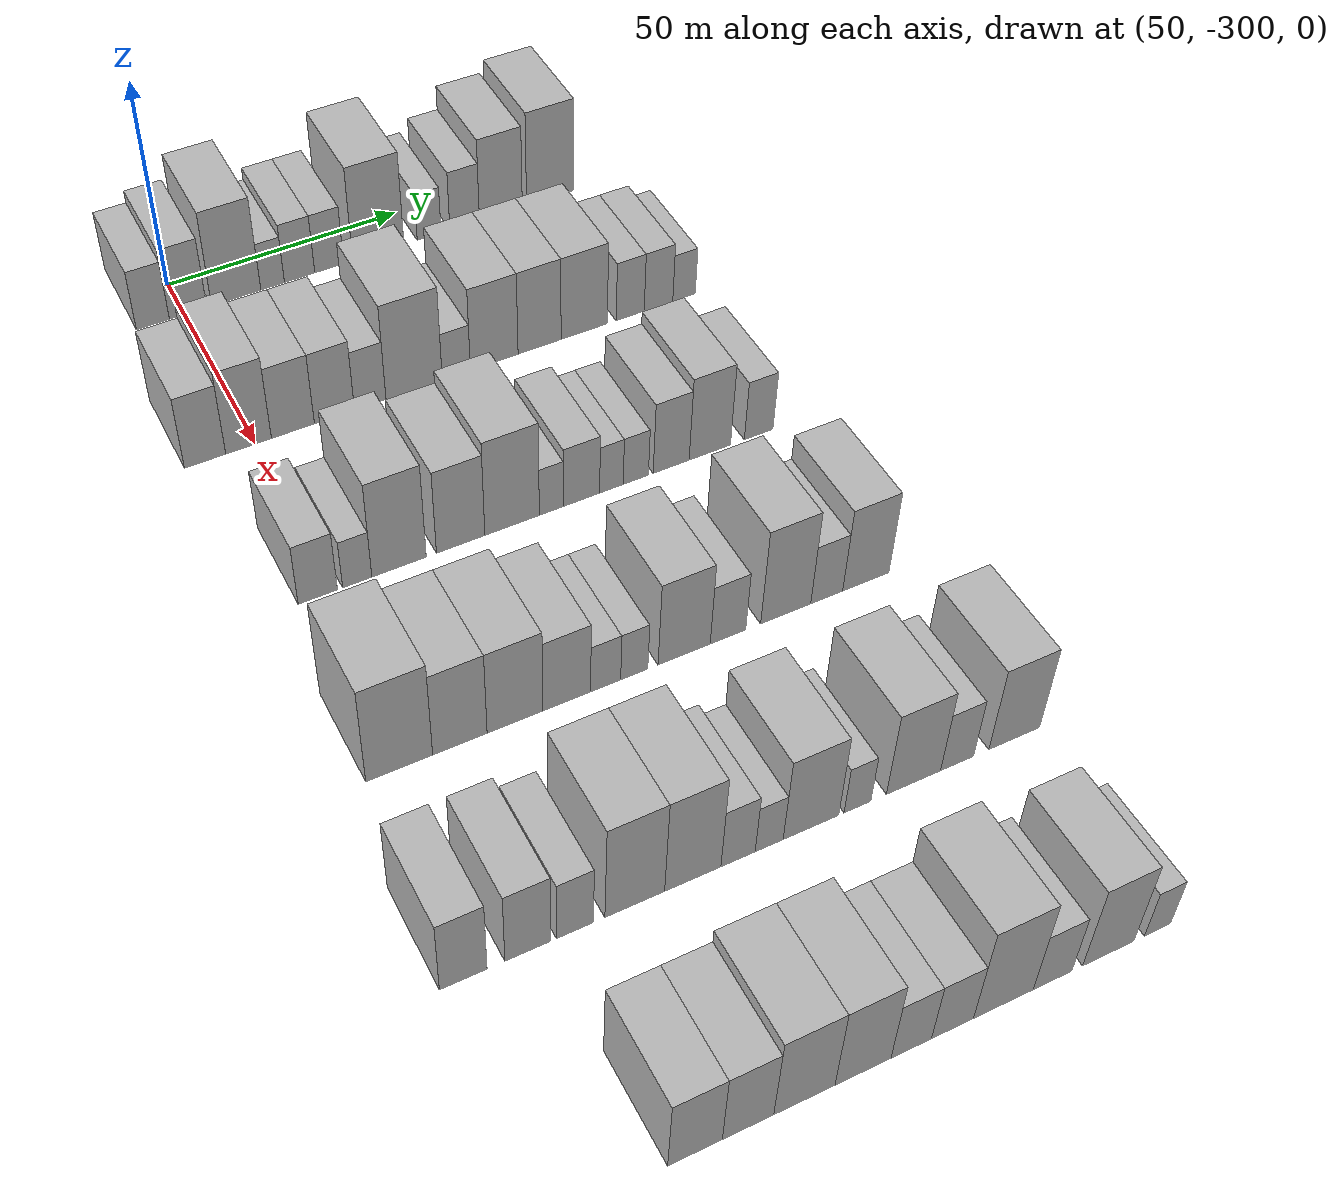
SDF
<sdf version="1.6">
 <world name="default">
  <model name="building_32">
   <static>1</static>
   <pose>50.0000 -306.5154 0 0.000000 0.000000 0.000000</pose>
   <link name="link">
    <pose>0 0 7.50 0 0 0</pose>
    <collision name="collision"><geometry><box><size>20.0000 6.8873 15.0000</size></box></geometry></collision>
    <visual name="visual">
     <cast_shadows>0</cast_shadows>
     <geometry><box><size>20.0000 6.8873 15.0000</size></box></geometry>
     <material>
      <script>
       <uri>model://HANNAS_wall/materials/scripts</uri>
       <uri>model://HANNAS_wall/materials/textures</uri>
       <name>vrc/HANNAS_wall</name>
      </script>
     </material>
    </visual>
   </link>
  </model>
  <model name="building_33">
   <static>1</static>
   <pose>50.0000 -299.1280 0 0.000000 0.000000 0.000000</pose>
   <link name="link">
    <pose>0 0 9.00 0 0 0</pose>
    <collision name="collision"><geometry><box><size>20.0000 7.8874 18.0000</size></box></geometry></collision>
    <visual name="visual">
     <cast_shadows>0</cast_shadows>
     <geometry><box><size>20.0000 7.8874 18.0000</size></box></geometry>
     <material>
      <script>
       <uri>model://HANNAS_wall/materials/scripts</uri>
       <uri>model://HANNAS_wall/materials/textures</uri>
       <name>vrc/HANNAS_wall</name>
      </script>
     </material>
    </visual>
   </link>
  </model>
  <model name="building_34">
   <static>1</static>
   <pose>50.0000 -288.9221 0 0.000000 0.000000 0.000000</pose>
   <link name="link">
    <pose>0 0 12.00 0 0 0</pose>
    <collision name="collision"><geometry><box><size>20.0000 10.5243 24.0000</size></box></geometry></collision>
    <visual name="visual">
     <cast_shadows>0</cast_shadows>
     <geometry><box><size>20.0000 10.5243 24.0000</size></box></geometry>
     <material>
      <script>
       <uri>model://HANNAS_wall/materials/scripts</uri>
       <uri>model://HANNAS_wall/materials/textures</uri>
       <name>vrc/HANNAS_wall</name>
      </script>
     </material>
    </visual>
   </link>
  </model>
  <model name="building_35">
   <static>1</static>
   <pose>50.0000 -281.1054 0 0.000000 0.000000 0.000000</pose>
   <link name="link">
    <pose>0 0 6.00 0 0 0</pose>
    <collision name="collision"><geometry><box><size>20.0000 5.1092 12.0000</size></box></geometry></collision>
    <visual name="visual">
     <cast_shadows>0</cast_shadows>
     <geometry><box><size>20.0000 5.1092 12.0000</size></box></geometry>
     <material>
      <script>
       <uri>model://HANNAS_wall/materials/scripts</uri>
       <uri>model://HANNAS_wall/materials/textures</uri>
       <name>vrc/HANNAS_wall</name>
      </script>
     </material>
    </visual>
   </link>
  </model>
  <model name="building_36">
   <static>1</static>
   <pose>50.0000 -275.2519 0 0.000000 0.000000 0.000000</pose>
   <link name="link">
    <pose>0 0 7.50 0 0 0</pose>
    <collision name="collision"><geometry><box><size>20.0000 6.5978 15.0000</size></box></geometry></collision>
    <visual name="visual">
     <cast_shadows>0</cast_shadows>
     <geometry><box><size>20.0000 6.5978 15.0000</size></box></geometry>
     <material>
      <script>
       <uri>model://HANNAS_wall/materials/scripts</uri>
       <uri>model://HANNAS_wall/materials/textures</uri>
       <name>vrc/HANNAS_wall</name>
      </script>
     </material>
    </visual>
   </link>
  </model>
  <model name="building_37">
   <static>1</static>
   <pose>50.0000 -268.7758 0 0.000000 0.000000 0.000000</pose>
   <link name="link">
    <pose>0 0 7.50 0 0 0</pose>
    <collision name="collision"><geometry><box><size>20.0000 6.3543 15.0000</size></box></geometry></collision>
    <visual name="visual">
     <cast_shadows>0</cast_shadows>
     <geometry><box><size>20.0000 6.3543 15.0000</size></box></geometry>
     <material>
      <script>
       <uri>model://HANNAS_wall/materials/scripts</uri>
       <uri>model://HANNAS_wall/materials/textures</uri>
       <name>vrc/HANNAS_wall</name>
      </script>
     </material>
    </visual>
   </link>
  </model>
  <model name="building_38">
   <static>1</static>
   <pose>50.0000 -257.8932 0 0.000000 0.000000 0.000000</pose>
   <link name="link">
    <pose>0 0 12.00 0 0 0</pose>
    <collision name="collision"><geometry><box><size>20.0000 11.4109 24.0000</size></box></geometry></collision>
    <visual name="visual">
     <cast_shadows>0</cast_shadows>
     <geometry><box><size>20.0000 11.4109 24.0000</size></box></geometry>
     <material>
      <script>
       <uri>model://HANNAS_wall/materials/scripts</uri>
       <uri>model://HANNAS_wall/materials/textures</uri>
       <name>vrc/HANNAS_wall</name>
      </script>
     </material>
    </visual>
   </link>
  </model>
  <model name="building_39">
   <static>1</static>
   <pose>50.0000 -246.4863 0 0.000000 0.000000 0.000000</pose>
   <link name="link">
    <pose>0 0 6.00 0 0 0</pose>
    <collision name="collision"><geometry><box><size>20.0000 5.4028 12.0000</size></box></geometry></collision>
    <visual name="visual">
     <cast_shadows>0</cast_shadows>
     <geometry><box><size>20.0000 5.4028 12.0000</size></box></geometry>
     <material>
      <script>
       <uri>model://HANNAS_wall/materials/scripts</uri>
       <uri>model://HANNAS_wall/materials/textures</uri>
       <name>vrc/HANNAS_wall</name>
      </script>
     </material>
    </visual>
   </link>
  </model>
  <model name="building_40">
   <static>1</static>
   <pose>50.0000 -238.3935 0 0.000000 0.000000 0.000000</pose>
   <link name="link">
    <pose>0 0 7.50 0 0 0</pose>
    <collision name="collision"><geometry><box><size>20.0000 6.7829 15.0000</size></box></geometry></collision>
    <visual name="visual">
     <cast_shadows>0</cast_shadows>
     <geometry><box><size>20.0000 6.7829 15.0000</size></box></geometry>
     <material>
      <script>
       <uri>model://HANNAS_wall/materials/scripts</uri>
       <uri>model://HANNAS_wall/materials/textures</uri>
       <name>vrc/HANNAS_wall</name>
      </script>
     </material>
    </visual>
   </link>
  </model>
  <model name="building_41">
   <static>1</static>
   <pose>50.0000 -230.0352 0 0.000000 0.000000 0.000000</pose>
   <link name="link">
    <pose>0 0 10.50 0 0 0</pose>
    <collision name="collision"><geometry><box><size>20.0000 9.9336 21.0000</size></box></geometry></collision>
    <visual name="visual">
     <cast_shadows>0</cast_shadows>
     <geometry><box><size>20.0000 9.9336 21.0000</size></box></geometry>
     <material>
      <script>
       <uri>model://HANNAS_wall/materials/scripts</uri>
       <uri>model://HANNAS_wall/materials/textures</uri>
       <name>vrc/HANNAS_wall</name>
      </script>
     </material>
    </visual>
   </link>
  </model>
  <model name="building_42">
   <static>1</static>
   <pose>50.0000 -218.5672 0 0.000000 0.000000 0.000000</pose>
   <link name="link">
    <pose>0 0 12.00 0 0 0</pose>
    <collision name="collision"><geometry><box><size>20.0000 11.0022 24.0000</size></box></geometry></collision>
    <visual name="visual">
     <cast_shadows>0</cast_shadows>
     <geometry><box><size>20.0000 11.0022 24.0000</size></box></geometry>
     <material>
      <script>
       <uri>model://HANNAS_wall/materials/scripts</uri>
       <uri>model://HANNAS_wall/materials/textures</uri>
       <name>vrc/HANNAS_wall</name>
      </script>
     </material>
    </visual>
   </link>
  </model>
  <model name="building_175">
   <static>1</static>
   <pose>90.0000 -309.9667 0 0.000000 0.000000 0.000000</pose>
   <link name="link">
    <pose>0 0 9.00 0 0 0</pose>
    <collision name="collision"><geometry><box><size>20.0000 8.1712 18.0000</size></box></geometry></collision>
    <visual name="visual">
     <cast_shadows>0</cast_shadows>
     <geometry><box><size>20.0000 8.1712 18.0000</size></box></geometry>
     <material>
      <script>
       <uri>model://HANNAS_wall/materials/scripts</uri>
       <uri>model://HANNAS_wall/materials/textures</uri>
       <name>vrc/HANNAS_wall</name>
      </script>
     </material>
    </visual>
   </link>
  </model>
  <model name="building_176">
   <static>1</static>
   <pose>90.0000 -301.3158 0 0.000000 0.000000 0.000000</pose>
   <link name="link">
    <pose>0 0 10.50 0 0 0</pose>
    <collision name="collision"><geometry><box><size>20.0000 9.1305 21.0000</size></box></geometry></collision>
    <visual name="visual">
     <cast_shadows>0</cast_shadows>
     <geometry><box><size>20.0000 9.1305 21.0000</size></box></geometry>
     <material>
      <script>
       <uri>model://HANNAS_wall/materials/scripts</uri>
       <uri>model://HANNAS_wall/materials/textures</uri>
       <name>vrc/HANNAS_wall</name>
      </script>
     </material>
    </visual>
   </link>
  </model>
  <model name="building_177">
   <static>1</static>
   <pose>90.0000 -292.3960 0 0.000000 0.000000 0.000000</pose>
   <link name="link">
    <pose>0 0 9.00 0 0 0</pose>
    <collision name="collision"><geometry><box><size>20.0000 8.7093 18.0000</size></box></geometry></collision>
    <visual name="visual">
     <cast_shadows>0</cast_shadows>
     <geometry><box><size>20.0000 8.7093 18.0000</size></box></geometry>
     <material>
      <script>
       <uri>model://HANNAS_wall/materials/scripts</uri>
       <uri>model://HANNAS_wall/materials/textures</uri>
       <name>vrc/HANNAS_wall</name>
      </script>
     </material>
    </visual>
   </link>
  </model>
  <model name="building_178">
   <static>1</static>
   <pose>90.0000 -283.9366 0 0.000000 0.000000 0.000000</pose>
   <link name="link">
    <pose>0 0 9.00 0 0 0</pose>
    <collision name="collision"><geometry><box><size>20.0000 8.2094 18.0000</size></box></geometry></collision>
    <visual name="visual">
     <cast_shadows>0</cast_shadows>
     <geometry><box><size>20.0000 8.2094 18.0000</size></box></geometry>
     <material>
      <script>
       <uri>model://HANNAS_wall/materials/scripts</uri>
       <uri>model://HANNAS_wall/materials/textures</uri>
       <name>vrc/HANNAS_wall</name>
      </script>
     </material>
    </visual>
   </link>
  </model>
  <model name="building_179">
   <static>1</static>
   <pose>90.0000 -276.5588 0 0.000000 0.000000 0.000000</pose>
   <link name="link">
    <pose>0 0 7.50 0 0 0</pose>
    <collision name="collision"><geometry><box><size>20.0000 6.5462 15.0000</size></box></geometry></collision>
    <visual name="visual">
     <cast_shadows>0</cast_shadows>
     <geometry><box><size>20.0000 6.5462 15.0000</size></box></geometry>
     <material>
      <script>
       <uri>model://HANNAS_wall/materials/scripts</uri>
       <uri>model://HANNAS_wall/materials/textures</uri>
       <name>vrc/HANNAS_wall</name>
      </script>
     </material>
    </visual>
   </link>
  </model>
  <model name="building_180">
   <static>1</static>
   <pose>90.0000 -267.3693 0 0.000000 0.000000 0.000000</pose>
   <link name="link">
    <pose>0 0 12.00 0 0 0</pose>
    <collision name="collision"><geometry><box><size>20.0000 11.8329 24.0000</size></box></geometry></collision>
    <visual name="visual">
     <cast_shadows>0</cast_shadows>
     <geometry><box><size>20.0000 11.8329 24.0000</size></box></geometry>
     <material>
      <script>
       <uri>model://HANNAS_wall/materials/scripts</uri>
       <uri>model://HANNAS_wall/materials/textures</uri>
       <name>vrc/HANNAS_wall</name>
      </script>
     </material>
    </visual>
   </link>
  </model>
  <model name="building_181">
   <static>1</static>
   <pose>90.0000 -258.4554 0 0.000000 0.000000 0.000000</pose>
   <link name="link">
    <pose>0 0 6.00 0 0 0</pose>
    <collision name="collision"><geometry><box><size>20.0000 5.9948 12.0000</size></box></geometry></collision>
    <visual name="visual">
     <cast_shadows>0</cast_shadows>
     <geometry><box><size>20.0000 5.9948 12.0000</size></box></geometry>
     <material>
      <script>
       <uri>model://HANNAS_wall/materials/scripts</uri>
       <uri>model://HANNAS_wall/materials/textures</uri>
       <name>vrc/HANNAS_wall</name>
      </script>
     </material>
    </visual>
   </link>
  </model>
  <model name="building_182">
   <static>1</static>
   <pose>90.0000 -250.3163 0 0.000000 0.000000 0.000000</pose>
   <link name="link">
    <pose>0 0 10.50 0 0 0</pose>
    <collision name="collision"><geometry><box><size>20.0000 10.2834 21.0000</size></box></geometry></collision>
    <visual name="visual">
     <cast_shadows>0</cast_shadows>
     <geometry><box><size>20.0000 10.2834 21.0000</size></box></geometry>
     <material>
      <script>
       <uri>model://HANNAS_wall/materials/scripts</uri>
       <uri>model://HANNAS_wall/materials/textures</uri>
       <name>vrc/HANNAS_wall</name>
      </script>
     </material>
    </visual>
   </link>
  </model>
  <model name="building_183">
   <static>1</static>
   <pose>90.0000 -240.4753 0 0.000000 0.000000 0.000000</pose>
   <link name="link">
    <pose>0 0 10.50 0 0 0</pose>
    <collision name="collision"><geometry><box><size>20.0000 9.3986 21.0000</size></box></geometry></collision>
    <visual name="visual">
     <cast_shadows>0</cast_shadows>
     <geometry><box><size>20.0000 9.3986 21.0000</size></box></geometry>
     <material>
      <script>
       <uri>model://HANNAS_wall/materials/scripts</uri>
       <uri>model://HANNAS_wall/materials/textures</uri>
       <name>vrc/HANNAS_wall</name>
      </script>
     </material>
    </visual>
   </link>
  </model>
  <model name="building_184">
   <static>1</static>
   <pose>90.0000 -230.6611 0 0.000000 0.000000 0.000000</pose>
   <link name="link">
    <pose>0 0 10.50 0 0 0</pose>
    <collision name="collision"><geometry><box><size>20.0000 10.2300 21.0000</size></box></geometry></collision>
    <visual name="visual">
     <cast_shadows>0</cast_shadows>
     <geometry><box><size>20.0000 10.2300 21.0000</size></box></geometry>
     <material>
      <script>
       <uri>model://HANNAS_wall/materials/scripts</uri>
       <uri>model://HANNAS_wall/materials/textures</uri>
       <name>vrc/HANNAS_wall</name>
      </script>
     </material>
    </visual>
   </link>
  </model>
  <model name="building_185">
   <static>1</static>
   <pose>90.0000 -220.3784 0 0.000000 0.000000 0.000000</pose>
   <link name="link">
    <pose>0 0 7.50 0 0 0</pose>
    <collision name="collision"><geometry><box><size>20.0000 6.3353 15.0000</size></box></geometry></collision>
    <visual name="visual">
     <cast_shadows>0</cast_shadows>
     <geometry><box><size>20.0000 6.3353 15.0000</size></box></geometry>
     <material>
      <script>
       <uri>model://HANNAS_wall/materials/scripts</uri>
       <uri>model://HANNAS_wall/materials/textures</uri>
       <name>vrc/HANNAS_wall</name>
      </script>
     </material>
    </visual>
   </link>
  </model>
  <model name="building_186">
   <static>1</static>
   <pose>90.0000 -213.9624 0 0.000000 0.000000 0.000000</pose>
   <link name="link">
    <pose>0 0 7.50 0 0 0</pose>
    <collision name="collision"><geometry><box><size>20.0000 6.4967 15.0000</size></box></geometry></collision>
    <visual name="visual">
     <cast_shadows>0</cast_shadows>
     <geometry><box><size>20.0000 6.4967 15.0000</size></box></geometry>
     <material>
      <script>
       <uri>model://HANNAS_wall/materials/scripts</uri>
       <uri>model://HANNAS_wall/materials/textures</uri>
       <name>vrc/HANNAS_wall</name>
      </script>
     </material>
    </visual>
   </link>
  </model>
  <model name="building_187">
   <static>1</static>
   <pose>90.0000 -208.1421 0 0.000000 0.000000 0.000000</pose>
   <link name="link">
    <pose>0 0 6.00 0 0 0</pose>
    <collision name="collision"><geometry><box><size>20.0000 5.1441 12.0000</size></box></geometry></collision>
    <visual name="visual">
     <cast_shadows>0</cast_shadows>
     <geometry><box><size>20.0000 5.1441 12.0000</size></box></geometry>
     <material>
      <script>
       <uri>model://HANNAS_wall/materials/scripts</uri>
       <uri>model://HANNAS_wall/materials/textures</uri>
       <name>vrc/HANNAS_wall</name>
      </script>
     </material>
    </visual>
   </link>
  </model>
  <model name="building_312">
   <static>1</static>
   <pose>130.0000 -303.4103 0 0.000000 0.000000 0.000000</pose>
   <link name="link">
    <pose>0 0 7.50 0 0 0</pose>
    <collision name="collision"><geometry><box><size>20.0000 7.4398 15.0000</size></box></geometry></collision>
    <visual name="visual">
     <cast_shadows>0</cast_shadows>
     <geometry><box><size>20.0000 7.4398 15.0000</size></box></geometry>
     <material>
      <script>
       <uri>model://HANNAS_wall/materials/scripts</uri>
       <uri>model://HANNAS_wall/materials/textures</uri>
       <name>vrc/HANNAS_wall</name>
      </script>
     </material>
    </visual>
   </link>
  </model>
  <model name="building_313">
   <static>1</static>
   <pose>130.0000 -295.8928 0 0.000000 0.000000 0.000000</pose>
   <link name="link">
    <pose>0 0 6.00 0 0 0</pose>
    <collision name="collision"><geometry><box><size>20.0000 5.5952 12.0000</size></box></geometry></collision>
    <visual name="visual">
     <cast_shadows>0</cast_shadows>
     <geometry><box><size>20.0000 5.5952 12.0000</size></box></geometry>
     <material>
      <script>
       <uri>model://HANNAS_wall/materials/scripts</uri>
       <uri>model://HANNAS_wall/materials/textures</uri>
       <name>vrc/HANNAS_wall</name>
      </script>
     </material>
    </visual>
   </link>
  </model>
  <model name="building_314">
   <static>1</static>
   <pose>130.0000 -287.8171 0 0.000000 0.000000 0.000000</pose>
   <link name="link">
    <pose>0 0 12.00 0 0 0</pose>
    <collision name="collision"><geometry><box><size>20.0000 10.5563 24.0000</size></box></geometry></collision>
    <visual name="visual">
     <cast_shadows>0</cast_shadows>
     <geometry><box><size>20.0000 10.5563 24.0000</size></box></geometry>
     <material>
      <script>
       <uri>model://HANNAS_wall/materials/scripts</uri>
       <uri>model://HANNAS_wall/materials/textures</uri>
       <name>vrc/HANNAS_wall</name>
      </script>
     </material>
    </visual>
   </link>
  </model>
  <model name="building_315">
   <static>1</static>
   <pose>130.0000 -275.7472 0 0.000000 0.000000 0.000000</pose>
   <link name="link">
    <pose>0 0 10.50 0 0 0</pose>
    <collision name="collision"><geometry><box><size>20.0000 9.5836 21.0000</size></box></geometry></collision>
    <visual name="visual">
     <cast_shadows>0</cast_shadows>
     <geometry><box><size>20.0000 9.5836 21.0000</size></box></geometry>
     <material>
      <script>
       <uri>model://HANNAS_wall/materials/scripts</uri>
       <uri>model://HANNAS_wall/materials/textures</uri>
       <name>vrc/HANNAS_wall</name>
      </script>
     </material>
    </visual>
   </link>
  </model>
  <model name="building_316">
   <static>1</static>
   <pose>130.0000 -265.4803 0 0.000000 0.000000 0.000000</pose>
   <link name="link">
    <pose>0 0 12.00 0 0 0</pose>
    <collision name="collision"><geometry><box><size>20.0000 10.9502 24.0000</size></box></geometry></collision>
    <visual name="visual">
     <cast_shadows>0</cast_shadows>
     <geometry><box><size>20.0000 10.9502 24.0000</size></box></geometry>
     <material>
      <script>
       <uri>model://HANNAS_wall/materials/scripts</uri>
       <uri>model://HANNAS_wall/materials/textures</uri>
       <name>vrc/HANNAS_wall</name>
      </script>
     </material>
    </visual>
   </link>
  </model>
  <model name="building_317">
   <static>1</static>
   <pose>130.0000 -257.5781 0 0.000000 0.000000 0.000000</pose>
   <link name="link">
    <pose>0 0 6.00 0 0 0</pose>
    <collision name="collision"><geometry><box><size>20.0000 4.8541 12.0000</size></box></geometry></collision>
    <visual name="visual">
     <cast_shadows>0</cast_shadows>
     <geometry><box><size>20.0000 4.8541 12.0000</size></box></geometry>
     <material>
      <script>
       <uri>model://HANNAS_wall/materials/scripts</uri>
       <uri>model://HANNAS_wall/materials/textures</uri>
       <name>vrc/HANNAS_wall</name>
      </script>
     </material>
    </visual>
   </link>
  </model>
  <model name="building_318">
   <static>1</static>
   <pose>130.0000 -251.4110 0 0.000000 0.000000 0.000000</pose>
   <link name="link">
    <pose>0 0 7.50 0 0 0</pose>
    <collision name="collision"><geometry><box><size>20.0000 7.4801 15.0000</size></box></geometry></collision>
    <visual name="visual">
     <cast_shadows>0</cast_shadows>
     <geometry><box><size>20.0000 7.4801 15.0000</size></box></geometry>
     <material>
      <script>
       <uri>model://HANNAS_wall/materials/scripts</uri>
       <uri>model://HANNAS_wall/materials/textures</uri>
       <name>vrc/HANNAS_wall</name>
      </script>
     </material>
    </visual>
   </link>
  </model>
  <model name="building_319">
   <static>1</static>
   <pose>130.0000 -245.2232 0 0.000000 0.000000 0.000000</pose>
   <link name="link">
    <pose>0 0 6.00 0 0 0</pose>
    <collision name="collision"><geometry><box><size>20.0000 4.8953 12.0000</size></box></geometry></collision>
    <visual name="visual">
     <cast_shadows>0</cast_shadows>
     <geometry><box><size>20.0000 4.8953 12.0000</size></box></geometry>
     <material>
      <script>
       <uri>model://HANNAS_wall/materials/scripts</uri>
       <uri>model://HANNAS_wall/materials/textures</uri>
       <name>vrc/HANNAS_wall</name>
      </script>
     </material>
    </visual>
   </link>
  </model>
  <model name="building_320">
   <static>1</static>
   <pose>130.0000 -240.1349 0 0.000000 0.000000 0.000000</pose>
   <link name="link">
    <pose>0 0 6.00 0 0 0</pose>
    <collision name="collision"><geometry><box><size>20.0000 5.2814 12.0000</size></box></geometry></collision>
    <visual name="visual">
     <cast_shadows>0</cast_shadows>
     <geometry><box><size>20.0000 5.2814 12.0000</size></box></geometry>
     <material>
      <script>
       <uri>model://HANNAS_wall/materials/scripts</uri>
       <uri>model://HANNAS_wall/materials/textures</uri>
       <name>vrc/HANNAS_wall</name>
      </script>
     </material>
    </visual>
   </link>
  </model>
  <model name="building_321">
   <static>1</static>
   <pose>130.0000 -232.6825 0 0.000000 0.000000 0.000000</pose>
   <link name="link">
    <pose>0 0 9.00 0 0 0</pose>
    <collision name="collision"><geometry><box><size>20.0000 7.6234 18.0000</size></box></geometry></collision>
    <visual name="visual">
     <cast_shadows>0</cast_shadows>
     <geometry><box><size>20.0000 7.6234 18.0000</size></box></geometry>
     <material>
      <script>
       <uri>model://HANNAS_wall/materials/scripts</uri>
       <uri>model://HANNAS_wall/materials/textures</uri>
       <name>vrc/HANNAS_wall</name>
      </script>
     </material>
    </visual>
   </link>
  </model>
  <model name="building_322">
   <static>1</static>
   <pose>130.0000 -224.4405 0 0.000000 0.000000 0.000000</pose>
   <link name="link">
    <pose>0 0 10.50 0 0 0</pose>
    <collision name="collision"><geometry><box><size>20.0000 8.8605 21.0000</size></box></geometry></collision>
    <visual name="visual">
     <cast_shadows>0</cast_shadows>
     <geometry><box><size>20.0000 8.8605 21.0000</size></box></geometry>
     <material>
      <script>
       <uri>model://HANNAS_wall/materials/scripts</uri>
       <uri>model://HANNAS_wall/materials/textures</uri>
       <name>vrc/HANNAS_wall</name>
      </script>
     </material>
    </visual>
   </link>
  </model>
  <model name="building_323">
   <static>1</static>
   <pose>130.0000 -213.9063 0 0.000000 0.000000 0.000000</pose>
   <link name="link">
    <pose>0 0 7.50 0 0 0</pose>
    <collision name="collision"><geometry><box><size>20.0000 6.2080 15.0000</size></box></geometry></collision>
    <visual name="visual">
     <cast_shadows>0</cast_shadows>
     <geometry><box><size>20.0000 6.2080 15.0000</size></box></geometry>
     <material>
      <script>
       <uri>model://HANNAS_wall/materials/scripts</uri>
       <uri>model://HANNAS_wall/materials/textures</uri>
       <name>vrc/HANNAS_wall</name>
      </script>
     </material>
    </visual>
   </link>
  </model>
  <model name="building_452">
   <static>1</static>
   <pose>170.0000 -305.0671 0 0.000000 0.000000 0.000000</pose>
   <link name="link">
    <pose>0 0 12.00 0 0 0</pose>
    <collision name="collision"><geometry><box><size>20.0000 11.9788 24.0000</size></box></geometry></collision>
    <visual name="visual">
     <cast_shadows>0</cast_shadows>
     <geometry><box><size>20.0000 11.9788 24.0000</size></box></geometry>
     <material>
      <script>
       <uri>model://HANNAS_wall/materials/scripts</uri>
       <uri>model://HANNAS_wall/materials/textures</uri>
       <name>vrc/HANNAS_wall</name>
      </script>
     </material>
    </visual>
   </link>
  </model>
  <model name="building_453">
   <static>1</static>
   <pose>170.0000 -294.1149 0 0.000000 0.000000 0.000000</pose>
   <link name="link">
    <pose>0 0 10.50 0 0 0</pose>
    <collision name="collision"><geometry><box><size>20.0000 9.9257 21.0000</size></box></geometry></collision>
    <visual name="visual">
     <cast_shadows>0</cast_shadows>
     <geometry><box><size>20.0000 9.9257 21.0000</size></box></geometry>
     <material>
      <script>
       <uri>model://HANNAS_wall/materials/scripts</uri>
       <uri>model://HANNAS_wall/materials/textures</uri>
       <name>vrc/HANNAS_wall</name>
      </script>
     </material>
    </visual>
   </link>
  </model>
  <model name="building_454">
   <static>1</static>
   <pose>170.0000 -283.9713 0 0.000000 0.000000 0.000000</pose>
   <link name="link">
    <pose>0 0 10.50 0 0 0</pose>
    <collision name="collision"><geometry><box><size>20.0000 10.3615 21.0000</size></box></geometry></collision>
    <visual name="visual">
     <cast_shadows>0</cast_shadows>
     <geometry><box><size>20.0000 10.3615 21.0000</size></box></geometry>
     <material>
      <script>
       <uri>model://HANNAS_wall/materials/scripts</uri>
       <uri>model://HANNAS_wall/materials/textures</uri>
       <name>vrc/HANNAS_wall</name>
      </script>
     </material>
    </visual>
   </link>
  </model>
  <model name="building_455">
   <static>1</static>
   <pose>170.0000 -274.3099 0 0.000000 0.000000 0.000000</pose>
   <link name="link">
    <pose>0 0 9.00 0 0 0</pose>
    <collision name="collision"><geometry><box><size>20.0000 8.9614 18.0000</size></box></geometry></collision>
    <visual name="visual">
     <cast_shadows>0</cast_shadows>
     <geometry><box><size>20.0000 8.9614 18.0000</size></box></geometry>
     <material>
      <script>
       <uri>model://HANNAS_wall/materials/scripts</uri>
       <uri>model://HANNAS_wall/materials/textures</uri>
       <name>vrc/HANNAS_wall</name>
      </script>
     </material>
    </visual>
   </link>
  </model>
  <model name="building_456">
   <static>1</static>
   <pose>170.0000 -266.9509 0 0.000000 0.000000 0.000000</pose>
   <link name="link">
    <pose>0 0 6.00 0 0 0</pose>
    <collision name="collision"><geometry><box><size>20.0000 5.7566 12.0000</size></box></geometry></collision>
    <visual name="visual">
     <cast_shadows>0</cast_shadows>
     <geometry><box><size>20.0000 5.7566 12.0000</size></box></geometry>
     <material>
      <script>
       <uri>model://HANNAS_wall/materials/scripts</uri>
       <uri>model://HANNAS_wall/materials/textures</uri>
       <name>vrc/HANNAS_wall</name>
      </script>
     </material>
    </visual>
   </link>
  </model>
  <model name="building_457">
   <static>1</static>
   <pose>170.0000 -261.4567 0 0.000000 0.000000 0.000000</pose>
   <link name="link">
    <pose>0 0 6.00 0 0 0</pose>
    <collision name="collision"><geometry><box><size>20.0000 5.2319 12.0000</size></box></geometry></collision>
    <visual name="visual">
     <cast_shadows>0</cast_shadows>
     <geometry><box><size>20.0000 5.2319 12.0000</size></box></geometry>
     <material>
      <script>
       <uri>model://HANNAS_wall/materials/scripts</uri>
       <uri>model://HANNAS_wall/materials/textures</uri>
       <name>vrc/HANNAS_wall</name>
      </script>
     </material>
    </visual>
   </link>
  </model>
  <model name="building_458">
   <static>1</static>
   <pose>170.0000 -251.7332 0 0.000000 0.000000 0.000000</pose>
   <link name="link">
    <pose>0 0 10.50 0 0 0</pose>
    <collision name="collision"><geometry><box><size>20.0000 10.2150 21.0000</size></box></geometry></collision>
    <visual name="visual">
     <cast_shadows>0</cast_shadows>
     <geometry><box><size>20.0000 10.2150 21.0000</size></box></geometry>
     <material>
      <script>
       <uri>model://HANNAS_wall/materials/scripts</uri>
       <uri>model://HANNAS_wall/materials/textures</uri>
       <name>vrc/HANNAS_wall</name>
      </script>
     </material>
    </visual>
   </link>
  </model>
  <model name="building_459">
   <static>1</static>
   <pose>170.0000 -243.1007 0 0.000000 0.000000 0.000000</pose>
   <link name="link">
    <pose>0 0 7.50 0 0 0</pose>
    <collision name="collision"><geometry><box><size>20.0000 7.0500 15.0000</size></box></geometry></collision>
    <visual name="visual">
     <cast_shadows>0</cast_shadows>
     <geometry><box><size>20.0000 7.0500 15.0000</size></box></geometry>
     <material>
      <script>
       <uri>model://HANNAS_wall/materials/scripts</uri>
       <uri>model://HANNAS_wall/materials/textures</uri>
       <name>vrc/HANNAS_wall</name>
      </script>
     </material>
    </visual>
   </link>
  </model>
  <model name="building_460">
   <static>1</static>
   <pose>170.0000 -231.5041 0 0.000000 0.000000 0.000000</pose>
   <link name="link">
    <pose>0 0 12.00 0 0 0</pose>
    <collision name="collision"><geometry><box><size>20.0000 10.1431 24.0000</size></box></geometry></collision>
    <visual name="visual">
     <cast_shadows>0</cast_shadows>
     <geometry><box><size>20.0000 10.1431 24.0000</size></box></geometry>
     <material>
      <script>
       <uri>model://HANNAS_wall/materials/scripts</uri>
       <uri>model://HANNAS_wall/materials/textures</uri>
       <name>vrc/HANNAS_wall</name>
      </script>
     </material>
    </visual>
   </link>
  </model>
  <model name="building_461">
   <static>1</static>
   <pose>170.0000 -223.1510 0 0.000000 0.000000 0.000000</pose>
   <link name="link">
    <pose>0 0 7.50 0 0 0</pose>
    <collision name="collision"><geometry><box><size>20.0000 6.5632 15.0000</size></box></geometry></collision>
    <visual name="visual">
     <cast_shadows>0</cast_shadows>
     <geometry><box><size>20.0000 6.5632 15.0000</size></box></geometry>
     <material>
      <script>
       <uri>model://HANNAS_wall/materials/scripts</uri>
       <uri>model://HANNAS_wall/materials/textures</uri>
       <name>vrc/HANNAS_wall</name>
      </script>
     </material>
    </visual>
   </link>
  </model>
  <model name="building_462">
   <static>1</static>
   <pose>170.0000 -215.0681 0 0.000000 0.000000 0.000000</pose>
   <link name="link">
    <pose>0 0 10.50 0 0 0</pose>
    <collision name="collision"><geometry><box><size>20.0000 9.6027 21.0000</size></box></geometry></collision>
    <visual name="visual">
     <cast_shadows>0</cast_shadows>
     <geometry><box><size>20.0000 9.6027 21.0000</size></box></geometry>
     <material>
      <script>
       <uri>model://HANNAS_wall/materials/scripts</uri>
       <uri>model://HANNAS_wall/materials/textures</uri>
       <name>vrc/HANNAS_wall</name>
      </script>
     </material>
    </visual>
   </link>
  </model>
  <model name="building_593">
   <static>1</static>
   <pose>210.0000 -311.7841 0 0.000000 0.000000 0.000000</pose>
   <link name="link">
    <pose>0 0 9.00 0 0 0</pose>
    <collision name="collision"><geometry><box><size>20.0000 7.9647 18.0000</size></box></geometry></collision>
    <visual name="visual">
     <cast_shadows>0</cast_shadows>
     <geometry><box><size>20.0000 7.9647 18.0000</size></box></geometry>
     <material>
      <script>
       <uri>model://HANNAS_wall/materials/scripts</uri>
       <uri>model://HANNAS_wall/materials/textures</uri>
       <name>vrc/HANNAS_wall</name>
      </script>
     </material>
    </visual>
   </link>
  </model>
  <model name="building_594">
   <static>1</static>
   <pose>210.0000 -300.8948 0 0.000000 0.000000 0.000000</pose>
   <link name="link">
    <pose>0 0 9.00 0 0 0</pose>
    <collision name="collision"><geometry><box><size>20.0000 7.8139 18.0000</size></box></geometry></collision>
    <visual name="visual">
     <cast_shadows>0</cast_shadows>
     <geometry><box><size>20.0000 7.8139 18.0000</size></box></geometry>
     <material>
      <script>
       <uri>model://HANNAS_wall/materials/scripts</uri>
       <uri>model://HANNAS_wall/materials/textures</uri>
       <name>vrc/HANNAS_wall</name>
      </script>
     </material>
    </visual>
   </link>
  </model>
  <model name="building_595">
   <static>1</static>
   <pose>210.0000 -292.7959 0 0.000000 0.000000 0.000000</pose>
   <link name="link">
    <pose>0 0 7.50 0 0 0</pose>
    <collision name="collision"><geometry><box><size>20.0000 6.3839 15.0000</size></box></geometry></collision>
    <visual name="visual">
     <cast_shadows>0</cast_shadows>
     <geometry><box><size>20.0000 6.3839 15.0000</size></box></geometry>
     <material>
      <script>
       <uri>model://HANNAS_wall/materials/scripts</uri>
       <uri>model://HANNAS_wall/materials/textures</uri>
       <name>vrc/HANNAS_wall</name>
      </script>
     </material>
    </visual>
   </link>
  </model>
  <model name="building_596">
   <static>1</static>
   <pose>210.0000 -282.3351 0 0.000000 0.000000 0.000000</pose>
   <link name="link">
    <pose>0 0 12.00 0 0 0</pose>
    <collision name="collision"><geometry><box><size>20.0000 10.5376 24.0000</size></box></geometry></collision>
    <visual name="visual">
     <cast_shadows>0</cast_shadows>
     <geometry><box><size>20.0000 10.5376 24.0000</size></box></geometry>
     <material>
      <script>
       <uri>model://HANNAS_wall/materials/scripts</uri>
       <uri>model://HANNAS_wall/materials/textures</uri>
       <name>vrc/HANNAS_wall</name>
      </script>
     </material>
    </visual>
   </link>
  </model>
  <model name="building_597">
   <static>1</static>
   <pose>210.0000 -272.0073 0 0.000000 0.000000 0.000000</pose>
   <link name="link">
    <pose>0 0 12.00 0 0 0</pose>
    <collision name="collision"><geometry><box><size>20.0000 10.1180 24.0000</size></box></geometry></collision>
    <visual name="visual">
     <cast_shadows>0</cast_shadows>
     <geometry><box><size>20.0000 10.1180 24.0000</size></box></geometry>
     <material>
      <script>
       <uri>model://HANNAS_wall/materials/scripts</uri>
       <uri>model://HANNAS_wall/materials/textures</uri>
       <name>vrc/HANNAS_wall</name>
      </script>
     </material>
    </visual>
   </link>
  </model>
  <model name="building_598">
   <static>1</static>
   <pose>210.0000 -263.8295 0 0.000000 0.000000 0.000000</pose>
   <link name="link">
    <pose>0 0 7.50 0 0 0</pose>
    <collision name="collision"><geometry><box><size>20.0000 6.2375 15.0000</size></box></geometry></collision>
    <visual name="visual">
     <cast_shadows>0</cast_shadows>
     <geometry><box><size>20.0000 6.2375 15.0000</size></box></geometry>
     <material>
      <script>
       <uri>model://HANNAS_wall/materials/scripts</uri>
       <uri>model://HANNAS_wall/materials/textures</uri>
       <name>vrc/HANNAS_wall</name>
      </script>
     </material>
    </visual>
   </link>
  </model>
  <model name="building_599">
   <static>1</static>
   <pose>210.0000 -258.1295 0 0.000000 0.000000 0.000000</pose>
   <link name="link">
    <pose>0 0 6.00 0 0 0</pose>
    <collision name="collision"><geometry><box><size>20.0000 5.1626 12.0000</size></box></geometry></collision>
    <visual name="visual">
     <cast_shadows>0</cast_shadows>
     <geometry><box><size>20.0000 5.1626 12.0000</size></box></geometry>
     <material>
      <script>
       <uri>model://HANNAS_wall/materials/scripts</uri>
       <uri>model://HANNAS_wall/materials/textures</uri>
       <name>vrc/HANNAS_wall</name>
      </script>
     </material>
    </visual>
   </link>
  </model>
  <model name="building_600">
   <static>1</static>
   <pose>210.0000 -250.3533 0 0.000000 0.000000 0.000000</pose>
   <link name="link">
    <pose>0 0 10.50 0 0 0</pose>
    <collision name="collision"><geometry><box><size>20.0000 10.3898 21.0000</size></box></geometry></collision>
    <visual name="visual">
     <cast_shadows>0</cast_shadows>
     <geometry><box><size>20.0000 10.3898 21.0000</size></box></geometry>
     <material>
      <script>
       <uri>model://HANNAS_wall/materials/scripts</uri>
       <uri>model://HANNAS_wall/materials/textures</uri>
       <name>vrc/HANNAS_wall</name>
      </script>
     </material>
    </visual>
   </link>
  </model>
  <model name="building_601">
   <static>1</static>
   <pose>210.0000 -241.6159 0 0.000000 0.000000 0.000000</pose>
   <link name="link">
    <pose>0 0 6.00 0 0 0</pose>
    <collision name="collision"><geometry><box><size>20.0000 5.0850 12.0000</size></box></geometry></collision>
    <visual name="visual">
     <cast_shadows>0</cast_shadows>
     <geometry><box><size>20.0000 5.0850 12.0000</size></box></geometry>
     <material>
      <script>
       <uri>model://HANNAS_wall/materials/scripts</uri>
       <uri>model://HANNAS_wall/materials/textures</uri>
       <name>vrc/HANNAS_wall</name>
      </script>
     </material>
    </visual>
   </link>
  </model>
  <model name="building_602">
   <static>1</static>
   <pose>210.0000 -230.8396 0 0.000000 0.000000 0.000000</pose>
   <link name="link">
    <pose>0 0 10.50 0 0 0</pose>
    <collision name="collision"><geometry><box><size>20.0000 10.4677 21.0000</size></box></geometry></collision>
    <visual name="visual">
     <cast_shadows>0</cast_shadows>
     <geometry><box><size>20.0000 10.4677 21.0000</size></box></geometry>
     <material>
      <script>
       <uri>model://HANNAS_wall/materials/scripts</uri>
       <uri>model://HANNAS_wall/materials/textures</uri>
       <name>vrc/HANNAS_wall</name>
      </script>
     </material>
    </visual>
   </link>
  </model>
  <model name="building_603">
   <static>1</static>
   <pose>210.0000 -222.3572 0 0.000000 0.000000 0.000000</pose>
   <link name="link">
    <pose>0 0 7.50 0 0 0</pose>
    <collision name="collision"><geometry><box><size>20.0000 6.4971 15.0000</size></box></geometry></collision>
    <visual name="visual">
     <cast_shadows>0</cast_shadows>
     <geometry><box><size>20.0000 6.4971 15.0000</size></box></geometry>
     <material>
      <script>
       <uri>model://HANNAS_wall/materials/scripts</uri>
       <uri>model://HANNAS_wall/materials/textures</uri>
       <name>vrc/HANNAS_wall</name>
      </script>
     </material>
    </visual>
   </link>
  </model>
  <model name="building_604">
   <static>1</static>
   <pose>210.0000 -211.0317 0 0.000000 0.000000 0.000000</pose>
   <link name="link">
    <pose>0 0 10.50 0 0 0</pose>
    <collision name="collision"><geometry><box><size>20.0000 10.1539 21.0000</size></box></geometry></collision>
    <visual name="visual">
     <cast_shadows>0</cast_shadows>
     <geometry><box><size>20.0000 10.1539 21.0000</size></box></geometry>
     <material>
      <script>
       <uri>model://HANNAS_wall/materials/scripts</uri>
       <uri>model://HANNAS_wall/materials/textures</uri>
       <name>vrc/HANNAS_wall</name>
      </script>
     </material>
    </visual>
   </link>
  </model>
  <model name="building_725">
   <static>1</static>
   <pose>250.0000 -293.6160 0 0.000000 0.000000 0.000000</pose>
   <link name="link">
    <pose>0 0 9.00 0 0 0</pose>
    <collision name="collision"><geometry><box><size>20.0000 8.9229 18.0000</size></box></geometry></collision>
    <visual name="visual">
     <cast_shadows>0</cast_shadows>
     <geometry><box><size>20.0000 8.9229 18.0000</size></box></geometry>
     <material>
      <script>
       <uri>model://HANNAS_wall/materials/scripts</uri>
       <uri>model://HANNAS_wall/materials/textures</uri>
       <name>vrc/HANNAS_wall</name>
      </script>
     </material>
    </visual>
   </link>
  </model>
  <model name="building_726">
   <static>1</static>
   <pose>250.0000 -284.8876 0 0.000000 0.000000 0.000000</pose>
   <link name="link">
    <pose>0 0 9.00 0 0 0</pose>
    <collision name="collision"><geometry><box><size>20.0000 8.5339 18.0000</size></box></geometry></collision>
    <visual name="visual">
     <cast_shadows>0</cast_shadows>
     <geometry><box><size>20.0000 8.5339 18.0000</size></box></geometry>
     <material>
      <script>
       <uri>model://HANNAS_wall/materials/scripts</uri>
       <uri>model://HANNAS_wall/materials/textures</uri>
       <name>vrc/HANNAS_wall</name>
      </script>
     </material>
    </visual>
   </link>
  </model>
  <model name="building_727">
   <static>1</static>
   <pose>250.0000 -275.4416 0 0.000000 0.000000 0.000000</pose>
   <link name="link">
    <pose>0 0 10.50 0 0 0</pose>
    <collision name="collision"><geometry><box><size>20.0000 10.3582 21.0000</size></box></geometry></collision>
    <visual name="visual">
     <cast_shadows>0</cast_shadows>
     <geometry><box><size>20.0000 10.3582 21.0000</size></box></geometry>
     <material>
      <script>
       <uri>model://HANNAS_wall/materials/scripts</uri>
       <uri>model://HANNAS_wall/materials/textures</uri>
       <name>vrc/HANNAS_wall</name>
      </script>
     </material>
    </visual>
   </link>
  </model>
  <model name="building_728">
   <static>1</static>
   <pose>250.0000 -265.4270 0 0.000000 0.000000 0.000000</pose>
   <link name="link">
    <pose>0 0 10.50 0 0 0</pose>
    <collision name="collision"><geometry><box><size>20.0000 9.6711 21.0000</size></box></geometry></collision>
    <visual name="visual">
     <cast_shadows>0</cast_shadows>
     <geometry><box><size>20.0000 9.6711 21.0000</size></box></geometry>
     <material>
      <script>
       <uri>model://HANNAS_wall/materials/scripts</uri>
       <uri>model://HANNAS_wall/materials/textures</uri>
       <name>vrc/HANNAS_wall</name>
      </script>
     </material>
    </visual>
   </link>
  </model>
  <model name="building_729">
   <static>1</static>
   <pose>250.0000 -257.0400 0 0.000000 0.000000 0.000000</pose>
   <link name="link">
    <pose>0 0 7.50 0 0 0</pose>
    <collision name="collision"><geometry><box><size>20.0000 7.1028 15.0000</size></box></geometry></collision>
    <visual name="visual">
     <cast_shadows>0</cast_shadows>
     <geometry><box><size>20.0000 7.1028 15.0000</size></box></geometry>
     <material>
      <script>
       <uri>model://HANNAS_wall/materials/scripts</uri>
       <uri>model://HANNAS_wall/materials/textures</uri>
       <name>vrc/HANNAS_wall</name>
      </script>
     </material>
    </visual>
   </link>
  </model>
  <model name="building_730">
   <static>1</static>
   <pose>250.0000 -249.7568 0 0.000000 0.000000 0.000000</pose>
   <link name="link">
    <pose>0 0 7.50 0 0 0</pose>
    <collision name="collision"><geometry><box><size>20.0000 7.4638 15.0000</size></box></geometry></collision>
    <visual name="visual">
     <cast_shadows>0</cast_shadows>
     <geometry><box><size>20.0000 7.4638 15.0000</size></box></geometry>
     <material>
      <script>
       <uri>model://HANNAS_wall/materials/scripts</uri>
       <uri>model://HANNAS_wall/materials/textures</uri>
       <name>vrc/HANNAS_wall</name>
      </script>
     </material>
    </visual>
   </link>
  </model>
  <model name="building_731">
   <static>1</static>
   <pose>250.0000 -240.6074 0 0.000000 0.000000 0.000000</pose>
   <link name="link">
    <pose>0 0 12.00 0 0 0</pose>
    <collision name="collision"><geometry><box><size>20.0000 10.8349 24.0000</size></box></geometry></collision>
    <visual name="visual">
     <cast_shadows>0</cast_shadows>
     <geometry><box><size>20.0000 10.8349 24.0000</size></box></geometry>
     <material>
      <script>
       <uri>model://HANNAS_wall/materials/scripts</uri>
       <uri>model://HANNAS_wall/materials/textures</uri>
       <name>vrc/HANNAS_wall</name>
      </script>
     </material>
    </visual>
   </link>
  </model>
  <model name="building_732">
   <static>1</static>
   <pose>250.0000 -231.6465 0 0.000000 0.000000 0.000000</pose>
   <link name="link">
    <pose>0 0 7.50 0 0 0</pose>
    <collision name="collision"><geometry><box><size>20.0000 7.0869 15.0000</size></box></geometry></collision>
    <visual name="visual">
     <cast_shadows>0</cast_shadows>
     <geometry><box><size>20.0000 7.0869 15.0000</size></box></geometry>
     <material>
      <script>
       <uri>model://HANNAS_wall/materials/scripts</uri>
       <uri>model://HANNAS_wall/materials/textures</uri>
       <name>vrc/HANNAS_wall</name>
      </script>
     </material>
    </visual>
   </link>
  </model>
  <model name="building_733">
   <static>1</static>
   <pose>250.0000 -221.2942 0 0.000000 0.000000 0.000000</pose>
   <link name="link">
    <pose>0 0 10.50 0 0 0</pose>
    <collision name="collision"><geometry><box><size>20.0000 9.6177 21.0000</size></box></geometry></collision>
    <visual name="visual">
     <cast_shadows>0</cast_shadows>
     <geometry><box><size>20.0000 9.6177 21.0000</size></box></geometry>
     <material>
      <script>
       <uri>model://HANNAS_wall/materials/scripts</uri>
       <uri>model://HANNAS_wall/materials/textures</uri>
       <name>vrc/HANNAS_wall</name>
      </script>
     </material>
    </visual>
   </link>
  </model>
  <model name="building_734">
   <static>1</static>
   <pose>250.0000 -211.9975 0 0.000000 0.000000 0.000000</pose>
   <link name="link">
    <pose>0 0 6.00 0 0 0</pose>
    <collision name="collision"><geometry><box><size>20.0000 4.9757 12.0000</size></box></geometry></collision>
    <visual name="visual">
     <cast_shadows>0</cast_shadows>
     <geometry><box><size>20.0000 4.9757 12.0000</size></box></geometry>
     <material>
      <script>
       <uri>model://HANNAS_wall/materials/scripts</uri>
       <uri>model://HANNAS_wall/materials/textures</uri>
       <name>vrc/HANNAS_wall</name>
      </script>
     </material>
    </visual>
   </link>
  </model>
 </world>
</sdf>
